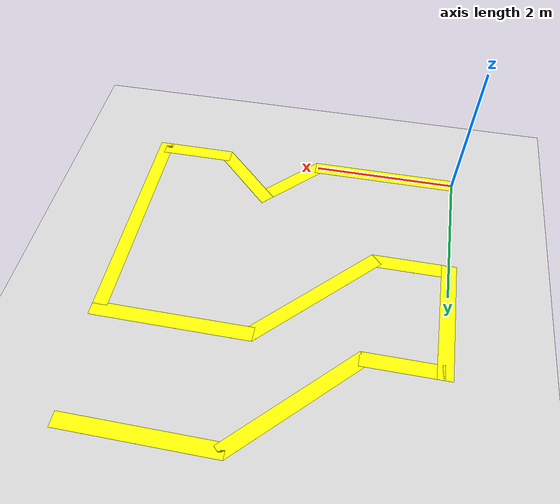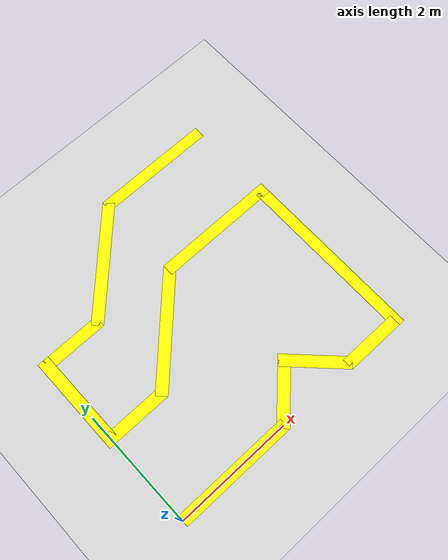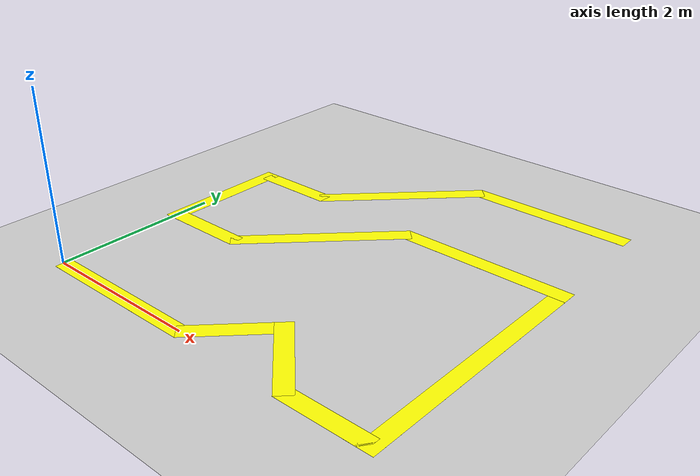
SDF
<sdf version="1.10">
 <world name="track_world">
  <physics type="ode">
   <real_time_update_rate>1000</real_time_update_rate>
   <max_step_size>0.001</max_step_size>
   <real_time_factor>1</real_time_factor>
   <ode>
    <solver>
     <type>quick</type>
     <iters>150</iters>
     <precon_iters>0</precon_iters>
     <sor>1.3999999999999999</sor>
     <use_dynamic_moi_rescaling>true</use_dynamic_moi_rescaling>
    </solver>
    <constraints>
     <cfm>1.0000000000000001e-05</cfm>
     <erp>0.20000000000000001</erp>
     <contact_max_correcting_vel>2000</contact_max_correcting_vel>
     <contact_surface_layer>0.01</contact_surface_layer>
    </constraints>
   </ode>
  </physics>
  <plugin name="gz::sim::systems::Physics" filename="gz-sim-physics-system"/>
  <plugin name="gz::sim::systems::UserCommands" filename="gz-sim-user-commands-system"/>
  <plugin name="gz::sim::systems::SceneBroadcaster" filename="gz-sim-scene-broadcaster-system"/>
  <plugin name="gz::sim::systems::Sensors" filename="gz-sim-sensors-system">
   <render_engine>ogre2</render_engine>
  </plugin>
  <plugin name="gz::sim::systems::Imu" filename="gz-sim-imu-system"/>
  <gravity>0 0 -9.8000000000000007</gravity>
  <magnetic_field>5.5644999999999998e-06 2.2875799999999999e-05 -4.2388400000000002e-05</magnetic_field>
  <atmosphere type="adiabatic"/>
  <scene>
   <ambient>0.400000006 0.400000006 0.400000006 1</ambient>
   <background>0.699999988 0.699999988 0.699999988 1</background>
   <shadows>true</shadows>
  </scene>
  <include>
   <uri>https://fuel.gazebosim.org/1.0/OpenRobotics/models/Ground Plane</uri>
   <name>ground_plane</name>
  </include>
  <model name="yellow_line_track">
   <static>true</static>
   <link name="track_link">
    <visual name="segmento1">
     <pose>1.021 0 0 0 0 0</pose>
     <geometry><box><size>2.041 0.2 0.0001</size></box></geometry>
     <material><ambient>1 1 0 1</ambient><diffuse>1 1 0 1</diffuse></material>
    </visual>
    <visual name="segmento2">
     <pose>2.339 0.339 0 0 0 0.785</pose>
     <geometry><box><size>1.041 0.2 0.0001</size></box></geometry>
     <material><ambient>1 1 0 1</ambient><diffuse>1 1 0 1</diffuse></material>
    </visual>
    <visual name="segmento3">
     <pose>3.04 0.375 0 0 0 -0.785</pose>
     <geometry><box><size>1.141 0.2 0.0001</size></box></geometry>
     <material><ambient>1 1 0 1</ambient><diffuse>1 1 0 1</diffuse></material>
    </visual>
    <visual name="segmento4">
     <pose>3.894 0 0 0 0 0</pose>
     <geometry><box><size>1.041 0.2 0.0001</size></box></geometry>
     <material><ambient>1 1 0 1</ambient><diffuse>1 1 0 1</diffuse></material>
    </visual>
    <visual name="segmento5">
     <pose>4.414 1.45 0 0 0 1.57</pose>
     <geometry><box><size>3.10 0.2 0.0001</size></box></geometry>
     <material><ambient>1 1 0 1</ambient><diffuse>1 1 0 1</diffuse></material>
    </visual>
    <visual name="segmento6">
     <pose>3.444 3 0 0 0 0</pose>
     <geometry><box><size>2.141 0.2 0.0001</size></box></geometry>
     <material><ambient>1 1 0 1</ambient><diffuse>1 1 0 1</diffuse></material>
    </visual>
    <visual name="segmento7">
     <pose>1.707 2.293 0 0 0 0.785</pose>
     <geometry><box><size>2.083 0.2 0.0001</size></box></geometry>
     <material><ambient>1 1 0 1</ambient><diffuse>1 1 0 1</diffuse></material>
    </visual>
    <visual name="segmento8">
     <pose>0.521 1.586 0 0 0 0</pose>
     <geometry><box><size>1.041 0.2 0.0001</size></box></geometry>
     <material><ambient>1 1 0 1</ambient><diffuse>1 1 0 1</diffuse></material>
    </visual>
    <visual name="segmento9">
     <pose>0 2.336 0 0 0 1.57</pose>
     <geometry><box><size>1.70 0.2 0.0001</size></box></geometry>
     <material><ambient>1 1 0 1</ambient><diffuse>1 1 0 1</diffuse></material>
    </visual>
    <visual name="segmento10">
     <pose>0.521 3.086 0 0 0 0</pose>
     <geometry><box><size>1.041 0.2 0.0001</size></box></geometry>
     <material><ambient>1 1 0 1</ambient><diffuse>1 1 0 1</diffuse></material>
    </visual>
    <visual name="segmento11">
     <pose>1.707 3.793 0 0 0 0.785</pose>
     <geometry><box><size>2.083 0.2 0.0001</size></box></geometry>
     <material><ambient>1 1 0 1</ambient><diffuse>1 1 0 1</diffuse></material>
    </visual>
    <visual name="segmento12">
     <pose>3.394 4.5 0 0 0 0</pose>
     <geometry><box><size>2.041 0.2 0.0001</size></box></geometry>
     <material><ambient>1 1 0 1</ambient><diffuse>1 1 0 1</diffuse></material>
    </visual>
   </link>
  </model>
  <light name="sun" type="directional">
   <pose>0 0 10 0 0 0</pose>
   <intensity>1</intensity>
   <direction>-0.5 0.10000000000000001 -0.90000000000000002</direction>
   <diffuse>0.800000012 0.800000012 0.800000012 1</diffuse>
   <specular>0.200000003 0.200000003 0.200000003 1</specular>
   <attenuation>
    <range>1000</range>
    <linear>0.01</linear>
    <constant>0.90000000000000002</constant>
    <quadratic>0.001</quadratic>
   </attenuation>
   <spot><inner_angle>0</inner_angle><outer_angle>0</outer_angle><falloff>0</falloff></spot>
  </light>
 </world>
</sdf>
